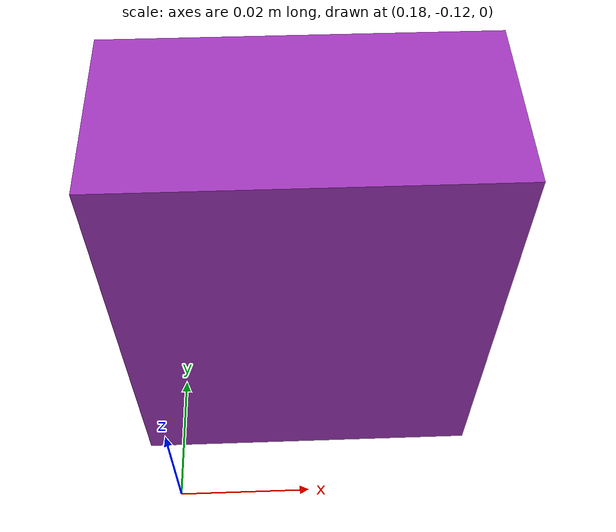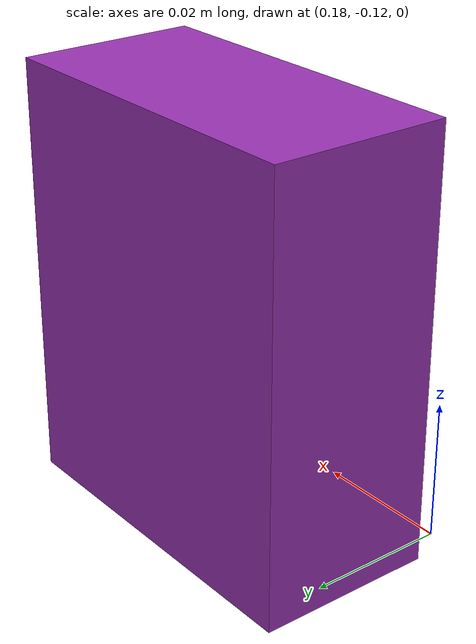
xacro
<?xml version="1.0"?>
<robot name="box">

<link name="base_link">
  <collision>
    <origin xyz="0.2 -0.1 0.032" rpy="0 0 0"/>
    <geometry>
      <box size="0.05 0.025 0.06" />
    </geometry>
  </collision>

  <visual>
    <origin xyz="0.2 -0.1 0.032" rpy="0 0 0"/>
    <geometry>
      <box size="0.05 0.025 0.06" />
    </geometry>
  </visual>

  <inertial>
    <origin xyz="0.2 -0.1 0.032" rpy="0 0 0" />
    <mass value="0.05" />
    <inertia
      ixx="1.7604e-5" ixy="0.0" ixz="0.0"
      iyy="2.5417e-5" iyz="0.0"
      izz="1.3021e-5" />
  </inertial>
  </link>

<gazebo reference="base_link">
  <material>Gazebo/Purple</material>
    <mu1>10.0</mu1>
    <mu2>10.0</mu2>
</gazebo>

</robot>
